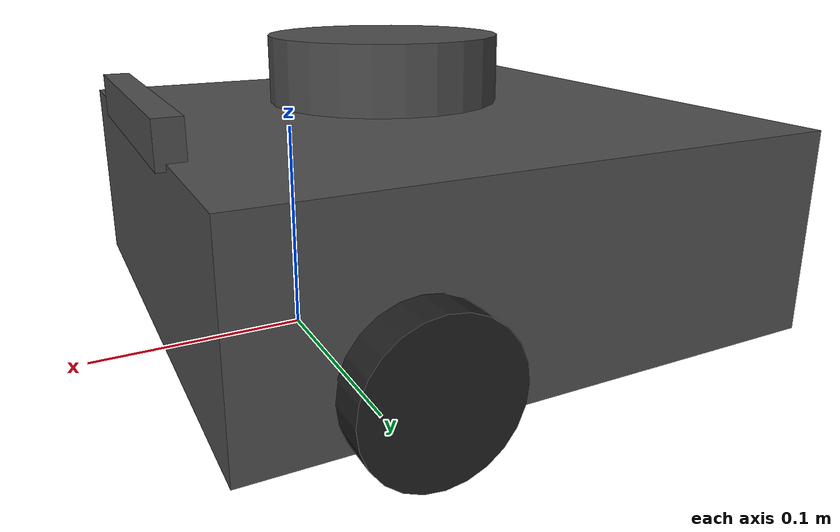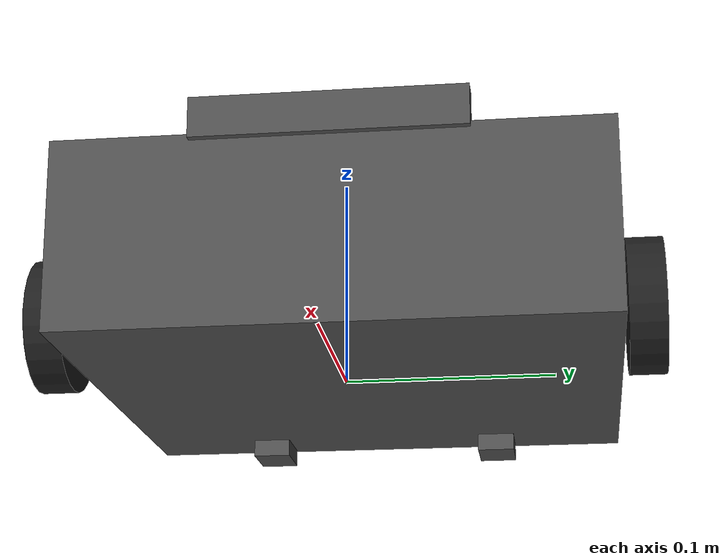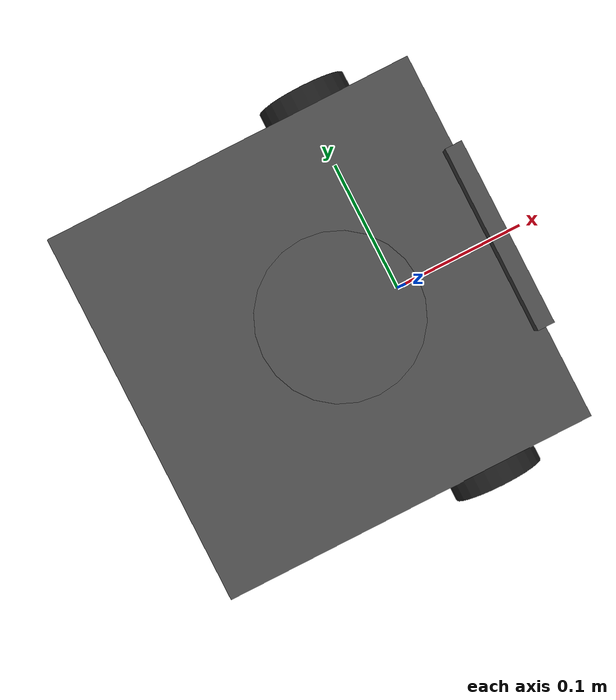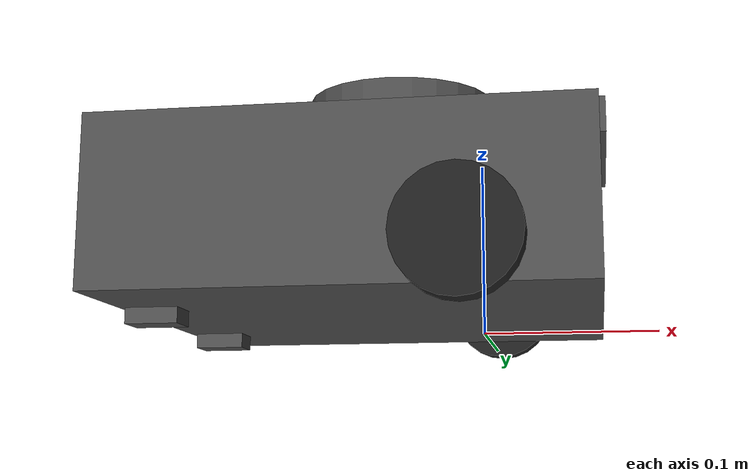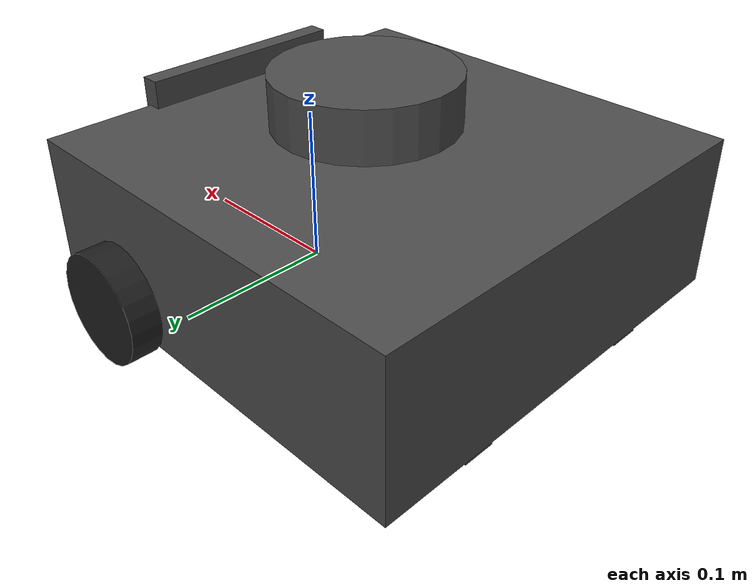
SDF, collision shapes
<?xml version='1.0'?>
<sdf version='1.6'>
  <model name='turtlebot3_waffle_no_collision'>
    <link name='base_footprint'>
      <pose frame=''>0 0 0 0 -0 0</pose>
      <inertial>
        <pose frame=''>0 0 0 0 -0 0</pose>
        <mass>3.49691</mass>
        <inertia>
          <ixx>0.0133097</ixx> 0.0133097world or encoder possible, Bora, 24/03/2020
          <ixy>0</ixy>
          <ixz>0.00091065</ixz>
          <iyy>0.0139133</iyy>
          <iyz>0</iyz>
          <izz>0.018379</izz>
        </inertia>-->
      </inertial>
      <self_collide>0</self_collide>
      <kinematic>0</kinematic>
      <velocity_decay/>
      <sensor name='realsense_R200' type='depth'>
        <always_on>1</always_on>
        <visualize>0</visualize>
        <camera name='__default__'>
          <horizontal_fov>1.3439</horizontal_fov>
          <image>
            <width>1920</width>
            <height>1080</height>
            <format>R8G8B8</format>
          </image>
          <depth_camera>
            <output>depths</output>
          </depth_camera>
          <clip>
            <near>0.03</near>
            <far>100</far>
          </clip>
        </camera>
        <plugin name='camera_controller' filename='libgazebo_ros_openni_kinect.so'>
          <baseline>0.2</baseline>
          <alwaysOn>true</alwaysOn>
          <updateRate>30.0</updateRate>
          <cameraName>camera</cameraName>
          <frameName>camera_rgb_optical_frame</frameName>
          <imageTopicName>rgb/image_raw</imageTopicName>
          <depthImageTopicName>depth/image_raw</depthImageTopicName>
          <pointCloudTopicName>depth/points</pointCloudTopicName>
          <cameraInfoTopicName>rgb/camera_info</cameraInfoTopicName>
          <depthImageCameraInfoTopicName>depth/camera_info</depthImageCameraInfoTopicName>
          <pointCloudCutoff>0.4</pointCloudCutoff>
          <hackBaseline>0.07</hackBaseline>
          <distortionK1>0.0</distortionK1>
          <distortionK2>0.0</distortionK2>
          <distortionK3>0.0</distortionK3>
          <distortionT1>0.0</distortionT1>
          <distortionT2>0.0</distortionT2>
          <CxPrime>0.0</CxPrime>
          <Cx>0.0</Cx>
          <Cy>0.0</Cy>
          <focalLength>0</focalLength>
          <hackBaseline>0</hackBaseline>
          <robotNamespace>/</robotNamespace>
        </plugin>
        <pose frame=''>0.069 -0.047 0.117 0 -0 0</pose>
      </sensor>
      <sensor name='imu' type='imu'>
        <always_on>1</always_on>
        <visualize>0</visualize>
        <pose frame=''>0 0 0.078 0 -0 0</pose>
      </sensor>
      <sensor type="gpu_ray" name="head_hokuyo_sensor">
            <pose>-0.064 0 0.13 0 -0 0</pose>
            <visualize>true</visualize>
            <update_rate>20</update_rate>
            <ray>
                <scan>
                    <horizontal>
                        <samples>180</samples>
                        <resolution>1</resolution>
                        <min_angle>-1.570796</min_angle>
                        <max_angle>1.570796</max_angle>
                    </horizontal>
                    <vertical>
                        <samples>1</samples>
                        <resolution>1</resolution>
                        <min_angle>0</min_angle>
                        <max_angle>0</max_angle>
                    </vertical>
                </scan>
                <range>
                    <min>0.10</min>
                    <max>5.0</max>
                    <resolution>0.01</resolution>
                </range>
                <noise>
                <type>gaussian</type>
                    <mean>0.0</mean>
                    <stddev>0.01</stddev>
                </noise>
          </ray>

          <plugin name="gazebo_ros_head_hokuyo_controller" filename="libgazebo_ros_gpu_laser.so">
            <topicName>/base_scan</topicName>
            <frameName>base_scan</frameName>
          </plugin>
        </sensor>
      <gravity>1</gravity>
      <visual name='base_footprint_fixed_joint_lump__base_link_visual'>
        <pose frame=''>-0.064 0 0.01 0 -0 0</pose>
        <geometry>
          <mesh>
            <scale>0.001 0.001 0.001</scale>
            <uri>/home/diamond/catkin_ws/src/turtlebot3/turtlebot3_description/meshes/bases/waffle_base.stl</uri>
          </mesh>
        </geometry>
        <material>
          <script>
            <name>Gazebo/DarkGrey</name>
            <uri>file://media/materials/scripts/gazebo.material</uri>
          </script>
          <ambient>0.175 0.175 0.175 1</ambient>
          <diffuse>0.175 0.175 0.175 1</diffuse>
          <specular>0.175 0.175 0.175 1</specular>
          <emissive>0 0 0 1</emissive>
          <shader type='vertex'>
            <normal_map>__default__</normal_map>
          </shader>
        </material>
        <cast_shadows>1</cast_shadows>
        <transparency>0</transparency>
      </visual>
      <visual name='base_footprint_fixed_joint_lump__camera_link_visual_1'>
        <pose frame=''>0.064 -0.065 0.104 1.57 -0 1.57</pose>
        <geometry>
          <mesh>
            <scale>1 1 1</scale>
            <uri>/home/diamond/catkin_ws/src/turtlebot3/turtlebot3_description/meshes/sensors/r200.dae</uri>
          </mesh>
        </geometry>
        <cast_shadows>1</cast_shadows>
        <transparency>0</transparency>
        <material>
          <shader type='vertex'>
            <normal_map>__default__</normal_map>
          </shader>
        </material>
      </visual>
      <visual name='base_footprint_fixed_joint_lump__base_scan_visual_2'>
        <pose frame=''>-0.064 0 0.132 0 -0 0</pose>
        <geometry>
          <mesh>
            <scale>0.001 0.001 0.001</scale>
            <uri>/home/diamond/catkin_ws/src/turtlebot3/turtlebot3_description/meshes/sensors/lds.stl</uri>
          </mesh>
        </geometry>
        <material>
          <script>
            <name>Gazebo/FlatBlack</name>
            <uri>file://media/materials/scripts/gazebo.material</uri>
          </script>
          <ambient>0.1 0.1 0.1 1</ambient>
          <diffuse>0.1 0.1 0.1 1</diffuse>
          <specular>0.01 0.01 0.01 1</specular>
          <emissive>0 0 0 1</emissive>
          <shader type='vertex'>
            <normal_map>__default__</normal_map>
          </shader>
        </material>
        <cast_shadows>1</cast_shadows>
        <transparency>0</transparency>
      </visual>
      <collision name='base_footprint_fixed_joint_lump__caster_back_right_link_collision_3'>
        <laser_retro>0</laser_retro>
        <max_contacts>10</max_contacts>
        <pose frame=''>-0.177 -0.063999 0.005 -1.57 0 0</pose>
        <geometry>
          <box>
            <size>0.03 0.009 0.02</size>
          </box>
        </geometry>
        <surface>
          <friction>
            <ode>
              <mu>0.1</mu>
              <mu2>0.1</mu2>
              <fdir1>0 0 0</fdir1>
              <slip1>0</slip1>
              <slip2>0</slip2>
            </ode>
            <torsional>
              <coefficient>1</coefficient>
              <patch_radius>0</patch_radius>
              <surface_radius>0</surface_radius>
              <use_patch_radius>1</use_patch_radius>
              <ode>
                <slip>0</slip>
              </ode>
            </torsional>
          </friction>
          <bounce>
            <restitution_coefficient>0</restitution_coefficient>
            <threshold>1e+06</threshold>
          </bounce>
          <contact>
            <collide_without_contact>0</collide_without_contact>
            <collide_without_contact_bitmask>1</collide_without_contact_bitmask>
            <collide_bitmask>3</collide_bitmask>
            <ode>
              <soft_cfm>0</soft_cfm>
              <soft_erp>0.2</soft_erp>
              <kp>1e+06</kp>
              <kd>100</kd>
              <max_vel>1</max_vel>
              <min_depth>0.001</min_depth>
            </ode>
            <bullet>
              <split_impulse>1</split_impulse>
              <split_impulse_penetration_threshold>-0.01</split_impulse_penetration_threshold>
              <soft_cfm>0</soft_cfm>
              <soft_erp>0.2</soft_erp>
              <kp>1e+06</kp>
              <kd>100</kd>
            </bullet>
          </contact>
        </surface>
      </collision>
      <collision name='base_footprint_fixed_joint_lump__camera_link_collision_1'>
        <laser_retro>0</laser_retro>
        <max_contacts>10</max_contacts>
        <pose frame=''>0.067 0 0.111 0 -0 0</pose>
        <geometry>
          <box>
            <size>0.012 0.132 0.02</size>
          </box>
        </geometry>
        <surface>
          <friction>
            <ode>
              <mu>1</mu>
              <mu2>1</mu2>
              <fdir1>0 0 0</fdir1>
              <slip1>0</slip1>
              <slip2>0</slip2>
            </ode>
            <torsional>
              <coefficient>1</coefficient>
              <patch_radius>0</patch_radius>
              <surface_radius>0</surface_radius>
              <use_patch_radius>1</use_patch_radius>
              <ode>
                <slip>0</slip>
              </ode>
            </torsional>
          </friction>
          <bounce>
            <restitution_coefficient>0</restitution_coefficient>
            <threshold>1e+06</threshold>
          </bounce>
          <contact>
            <collide_without_contact>0</collide_without_contact>
            <collide_without_contact_bitmask>1</collide_without_contact_bitmask>
            <collide_bitmask>1</collide_bitmask>
            <ode>
              <soft_cfm>0</soft_cfm>
              <soft_erp>0.2</soft_erp>
              <kp>1e+13</kp>
              <kd>1</kd>
              <max_vel>0.01</max_vel>
              <min_depth>0</min_depth>
            </ode>
            <bullet>
              <split_impulse>1</split_impulse>
              <split_impulse_penetration_threshold>-0.01</split_impulse_penetration_threshold>
              <soft_cfm>0</soft_cfm>
              <soft_erp>0.2</soft_erp>
              <kp>1e+13</kp>
              <kd>1</kd>
            </bullet>
          </contact>
        </surface>
      </collision>
      <collision name='base_footprint_fixed_joint_lump__caster_back_left_link_collision_2'>
        <laser_retro>0</laser_retro>
        <max_contacts>10</max_contacts>
        <pose frame=''>-0.177 0.064001 0.005 -1.57 0 0</pose>
        <geometry>
          <box>
            <size>0.03 0.009 0.02</size>
          </box>
        </geometry>
        <surface>
          <friction>
            <ode>
              <mu>0.1</mu>
              <mu2>0.1</mu2>
              <fdir1>0 0 0</fdir1>
              <slip1>0</slip1>
              <slip2>0</slip2>
            </ode>
            <torsional>
              <coefficient>1</coefficient>
              <patch_radius>0</patch_radius>
              <surface_radius>0</surface_radius>
              <use_patch_radius>1</use_patch_radius>
              <ode>
                <slip>0</slip>
              </ode>
            </torsional>
          </friction>
          <bounce>
            <restitution_coefficient>0</restitution_coefficient>
            <threshold>1e+06</threshold>
          </bounce>
          <contact>
            <collide_without_contact>0</collide_without_contact>
            <collide_without_contact_bitmask>1</collide_without_contact_bitmask>
            <collide_bitmask>3</collide_bitmask>
            <ode>
              <soft_cfm>0</soft_cfm>
              <soft_erp>0.2</soft_erp>
              <kp>1e+06</kp>
              <kd>100</kd>
              <max_vel>1</max_vel>
              <min_depth>0.001</min_depth>
            </ode>
            <bullet>
              <split_impulse>1</split_impulse>
              <split_impulse_penetration_threshold>-0.01</split_impulse_penetration_threshold>
              <soft_cfm>0</soft_cfm>
              <soft_erp>0.2</soft_erp>
              <kp>1e+06</kp>
              <kd>100</kd>
            </bullet>
          </contact>
        </surface>
      </collision>
      <collision name='base_footprint_fixed_joint_lump__base_link_collision'>
        <laser_retro>0</laser_retro>
        <max_contacts>10</max_contacts>
        <pose frame=''>-0.064 0 0.057 0 -0 0</pose>
        <geometry>
          <box>
            <size>0.266 0.266 0.094</size>
          </box>
        </geometry>
        <surface>
          <friction>
            <ode>
              <mu>1</mu>
              <mu2>1</mu2>
              <fdir1>0 0 0</fdir1>
              <slip1>0</slip1>
              <slip2>0</slip2>
            </ode>
            <torsional>
              <coefficient>1</coefficient>
              <patch_radius>0</patch_radius>
              <surface_radius>0</surface_radius>
              <use_patch_radius>1</use_patch_radius>
              <ode>
                <slip>0</slip>
              </ode>
            </torsional>
          </friction>
          <bounce>
            <restitution_coefficient>0</restitution_coefficient>
            <threshold>1e+06</threshold>
          </bounce>
          <contact>
            <collide_without_contact>0</collide_without_contact>
            <collide_without_contact_bitmask>1</collide_without_contact_bitmask>
            <collide_bitmask>1</collide_bitmask>
            <ode>
              <soft_cfm>0</soft_cfm>
              <soft_erp>0.2</soft_erp>
              <kp>1e+13</kp>
              <kd>1</kd>
              <max_vel>0.01</max_vel>
              <min_depth>0</min_depth>
            </ode>
            <bullet>
              <split_impulse>1</split_impulse>
              <split_impulse_penetration_threshold>-0.01</split_impulse_penetration_threshold>
              <soft_cfm>0</soft_cfm>
              <soft_erp>0.2</soft_erp>
              <kp>1e+13</kp>
              <kd>1</kd>
            </bullet>
          </contact>
        </surface>
      </collision>
      <collision name='base_footprint_fixed_joint_lump__base_scan_collision_4'>
        <laser_retro>0</laser_retro>
        <max_contacts>10</max_contacts>
        <pose frame=''>-0.049 0 0.1255 0 -0 0</pose>
        <geometry>
          <cylinder>
            <radius>0.055</radius>
            <length>0.0315</length>
          </cylinder>
        </geometry>
        <surface>
          <friction>
            <ode>
              <mu>0.1</mu>
              <mu2>0.1</mu2>
              <fdir1>0 0 0</fdir1>
              <slip1>0</slip1>
              <slip2>0</slip2>
            </ode>
            <torsional>
              <coefficient>1</coefficient>
              <patch_radius>0</patch_radius>
              <surface_radius>0</surface_radius>
              <use_patch_radius>1</use_patch_radius>
              <ode>
                <slip>0</slip>
              </ode>
            </torsional>
          </friction>
          <bounce>
            <restitution_coefficient>0</restitution_coefficient>
            <threshold>1e+06</threshold>
          </bounce>
          <contact>
            <collide_without_contact>0</collide_without_contact>
            <collide_without_contact_bitmask>1</collide_without_contact_bitmask>
            <collide_bitmask>1</collide_bitmask>
            <ode>
              <soft_cfm>0</soft_cfm>
              <soft_erp>0.2</soft_erp>
              <kp>1e+13</kp>
              <kd>1</kd>
              <max_vel>0.01</max_vel>
              <min_depth>0</min_depth>
            </ode>
            <bullet>
              <split_impulse>1</split_impulse>
              <split_impulse_penetration_threshold>-0.01</split_impulse_penetration_threshold>
              <soft_cfm>0</soft_cfm>
              <soft_erp>0.2</soft_erp>
              <kp>1e+13</kp>
              <kd>1</kd>
            </bullet>
          </contact>
        </surface>
      </collision>
    </link>
    <link name='wheel_left_link'>
      <pose frame=''>0 0.144 0.033 -1.57 0 0</pose>
      <inertial>
        <pose frame=''>0 0 0 0 -0 0</pose>
        <mass>0.0284989</mass>
        <inertia>
          <ixx>1.11756e-05</ixx>
          <ixy>-4.23698e-11</ixy>
          <ixz>-5.93817e-09</ixz>
          <iyy>1.11924e-05</iyy>
          <iyz>-1.44001e-11</iyz>
          <izz>2.07126e-05</izz>
        </inertia>
      </inertial>
      <self_collide>0</self_collide>
      <kinematic>0</kinematic>
      <velocity_decay/>
      <visual name='wheel_left_link_visual'>
        <pose frame=''>0 0 0 1.57 -0 0</pose>
        <geometry>
          <mesh>
            <scale>0.001 0.001 0.001</scale>
            <uri>/home/diamond/catkin_ws/src/turtlebot3/turtlebot3_description/meshes/wheels/left_tire.stl</uri>
          </mesh>
        </geometry>
        <material>
          <script>
            <name>Gazebo/FlatBlack</name>
            <uri>file://media/materials/scripts/gazebo.material</uri>
          </script>
          <ambient>0.1 0.1 0.1 1</ambient>
          <diffuse>0.1 0.1 0.1 1</diffuse>
          <specular>0.01 0.01 0.01 1</specular>
          <emissive>0 0 0 1</emissive>
        </material>
        <cast_shadows>1</cast_shadows>
        <transparency>0</transparency>
      </visual>
      <collision name='wheel_left_link_collision'>
        <laser_retro>0</laser_retro>
        <max_contacts>10</max_contacts>
        <pose frame=''>0 0 0 0 -0 0</pose>
        <geometry>
          <cylinder>
            <radius>0.033</radius>
            <length>0.018</length>
          </cylinder>
        </geometry>
        <surface>
          <friction>
            <ode>
              <mu>100</mu>
              <mu2>100</mu2>
              <fdir1>1 0 0</fdir1>
              <slip1>0</slip1>
              <slip2>0</slip2>
            </ode>
            <torsional>
              <coefficient>1</coefficient>
              <patch_radius>0</patch_radius>
              <surface_radius>0</surface_radius>
              <use_patch_radius>1</use_patch_radius>
              <ode>
                <slip>0</slip>
              </ode>
            </torsional>
          </friction>
          <bounce>
            <restitution_coefficient>0</restitution_coefficient>
            <threshold>1e+06</threshold>
          </bounce>
          <contact>
            <collide_without_contact>0</collide_without_contact>
            <collide_without_contact_bitmask>1</collide_without_contact_bitmask>
            <collide_bitmask>3</collide_bitmask>
            <ode>
              <soft_cfm>0</soft_cfm>
              <soft_erp>0.2</soft_erp>
              <kp>500000</kp>
              <kd>10</kd>
              <max_vel>0.1</max_vel>
              <min_depth>0.001</min_depth>
            </ode>
            <bullet>
              <split_impulse>1</split_impulse>
              <split_impulse_penetration_threshold>-0.01</split_impulse_penetration_threshold>
              <soft_cfm>0</soft_cfm>
              <soft_erp>0.2</soft_erp>
              <kp>500000</kp>
              <kd>10</kd>
            </bullet>
          </contact>
        </surface>
      </collision>
    </link>
    <link name='wheel_right_link'>
      <pose frame=''>-0 -0.144 0.033 -1.57 0 0</pose>
      <inertial>
        <pose frame=''>0 0 0 0 -0 0</pose>
        <mass>0.0284989</mass>
        <inertia>
          <ixx>1.11756e-05</ixx>
          <ixy>-4.23698e-11</ixy>
          <ixz>-5.93817e-09</ixz>
          <iyy>1.11924e-05</iyy>
          <iyz>-1.44001e-11</iyz>
          <izz>2.07126e-05</izz>
        </inertia>
      </inertial>
      <self_collide>0</self_collide>
      <kinematic>0</kinematic>
      <velocity_decay/>
      <visual name='wheel_right_link_visual'>
        <pose frame=''>0 0 0 1.57 -0 0</pose>
        <geometry>
          <mesh>
            <scale>0.001 0.001 0.001</scale>
            <uri>/home/diamond/catkin_ws/src/turtlebot3/turtlebot3_description/meshes/wheels/right_tire.stl</uri>
          </mesh>
        </geometry>
        <material>
          <script>
            <name>Gazebo/FlatBlack</name>
            <uri>file://media/materials/scripts/gazebo.material</uri>
          </script>
          <ambient>0.1 0.1 0.1 1</ambient>
          <diffuse>0.1 0.1 0.1 1</diffuse>
          <specular>0.01 0.01 0.01 1</specular>
          <emissive>0 0 0 1</emissive>
        </material>
        <cast_shadows>1</cast_shadows>
        <transparency>0</transparency>
      </visual>
      <collision name='wheel_right_link_collision'>
        <laser_retro>0</laser_retro>
        <max_contacts>10</max_contacts>
        <pose frame=''>0 0 0 0 -0 0</pose>
        <geometry>
          <cylinder>
            <radius>0.033</radius>
            <length>0.018</length>
          </cylinder>
        </geometry>
        <surface>
          <friction>
            <ode>
              <mu>100</mu>
              <mu2>100</mu2>
              <fdir1>1 0 0</fdir1>
              <slip1>0</slip1>
              <slip2>0</slip2>
            </ode>
            <torsional>
              <coefficient>1</coefficient>
              <patch_radius>0</patch_radius>
              <surface_radius>0</surface_radius>
              <use_patch_radius>1</use_patch_radius>
              <ode>
                <slip>0</slip>
              </ode>
            </torsional>
          </friction>
          <bounce>
            <restitution_coefficient>0</restitution_coefficient>
            <threshold>1e+06</threshold>
          </bounce>
          <contact>
            <collide_without_contact>0</collide_without_contact>
            <collide_without_contact_bitmask>1</collide_without_contact_bitmask>
            <collide_bitmask>3</collide_bitmask>
            <ode>
              <soft_cfm>0</soft_cfm>
              <soft_erp>0.2</soft_erp>
              <kp>500000</kp>
              <kd>10</kd>
              <max_vel>0.1</max_vel>
              <min_depth>0.001</min_depth>
            </ode>
            <bullet>
              <split_impulse>1</split_impulse>
              <split_impulse_penetration_threshold>-0.01</split_impulse_penetration_threshold>
              <soft_cfm>0</soft_cfm>
              <soft_erp>0.2</soft_erp>
              <kp>500000</kp>
              <kd>10</kd>
            </bullet>
          </contact>
        </surface>
      </collision>
    </link>
    <joint name='wheel_left_joint' type='revolute'>
      <parent>base_footprint</parent>
      <child>wheel_left_link</child>
      <pose frame=''>0 0 0 0 -0 0</pose>
      <axis>
        <xyz>0 1 0.000796</xyz>
        <use_parent_model_frame>1</use_parent_model_frame>
        <limit>
          <lower>-1e+16</lower>
          <upper>1e+16</upper>
          <effort>-1</effort>
          <velocity>-1</velocity>
        </limit>
        <dynamics>
          <spring_reference>0</spring_reference>
          <spring_stiffness>0</spring_stiffness>
          <damping>0</damping>
          <friction>0</friction>
        </dynamics>
      </axis>
      <physics>
        <ode>
          <limit>
            <cfm>0</cfm>
            <erp>0.2</erp>
          </limit>
          <suspension>
            <cfm>0</cfm>
            <erp>0.2</erp>
          </suspension>
        </ode>
      </physics>
    </joint>
    <joint name='wheel_right_joint' type='revolute'>
      <parent>base_footprint</parent>
      <child>wheel_right_link</child>
      <pose frame=''>0 0 0 0 -0 0</pose>
      <axis>
        <xyz>0 1 0.000796</xyz>
        <use_parent_model_frame>1</use_parent_model_frame>
        <limit>
          <lower>-1e+16</lower>
          <upper>1e+16</upper>
          <effort>-1</effort>
          <velocity>-1</velocity>
        </limit>
        <dynamics>
          <spring_reference>0</spring_reference>
          <spring_stiffness>0</spring_stiffness>
          <damping>0</damping>
          <friction>0</friction>
        </dynamics>
      </axis>
      <physics>
        <ode>
          <limit>
            <cfm>0</cfm>
            <erp>0.2</erp>
          </limit>
          <suspension>
            <cfm>0</cfm>
            <erp>0.2</erp>
          </suspension>
        </ode>
      </physics>
    </joint>
    <static>0</static>
    <allow_auto_disable>1</allow_auto_disable>
    <plugin name='imu_plugin' filename='libgazebo_ros_imu.so'>
      <alwaysOn>true</alwaysOn>
      <topicName>imu</topicName>
      <serviceName>imu_service</serviceName>
      <gaussianNoise>0.0</gaussianNoise>
      <updateRate>200</updateRate>
      <imu>
        <noise>
          <type>gaussian</type>
          <rate>
            <mean>0.0</mean>
            <stddev>2e-4</stddev>
            <bias_mean>0.0000075</bias_mean>
            <bias_stddev>0.0000008</bias_stddev>
          </rate>
          <accel>
            <mean>0.0</mean>
            <stddev>1.7e-2</stddev>
            <bias_mean>0.1</bias_mean>
            <bias_stddev>0.001</bias_stddev>
          </accel>
        </noise>
      </imu>
      <robotNamespace>/</robotNamespace>
      <bodyName>base_footprint</bodyName>
      <frameName>base_footprint</frameName>
      <xyzOffset>0 0 -0.156</xyzOffset>
      <rpyOffset>0 -0 0</rpyOffset>
    </plugin>
    <plugin name='turtlebot3_waffle_controller' filename='libgazebo_ros_diff_drive.so'>
      <commandTopic>cmd_vel</commandTopic>
      <odometryTopic>odom</odometryTopic>
      <odometryFrame>odom</odometryFrame>
      <odometrySource>world</odometrySource>
      <publishOdomTF>true</publishOdomTF>
      <robotBaseFrame>base_footprint</robotBaseFrame>
      <publishWheelTF>false</publishWheelTF>
      <publishTf>true</publishTf>
      <publishWheelJointState>true</publishWheelJointState>
      <legacyMode>false</legacyMode>
      <updateRate>30</updateRate>
      <leftJoint>wheel_left_joint</leftJoint>
      <rightJoint>wheel_right_joint</rightJoint>
      <wheelSeparation>0.287</wheelSeparation>
      <wheelDiameter>0.066</wheelDiameter>
      <wheelAcceleration>1</wheelAcceleration>
      <wheelTorque>10</wheelTorque>
      <rosDebugLevel>na</rosDebugLevel>
      <robotNamespace>/</robotNamespace>
    </plugin>
  </model>
</sdf>
